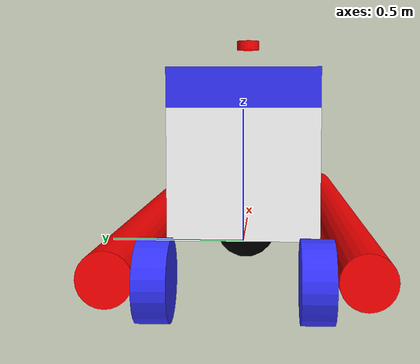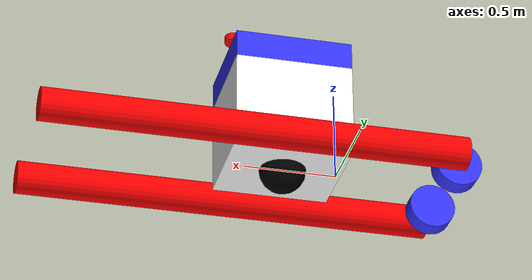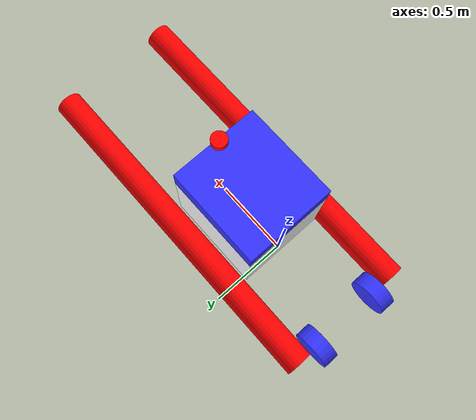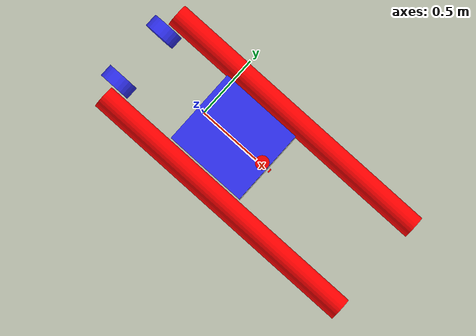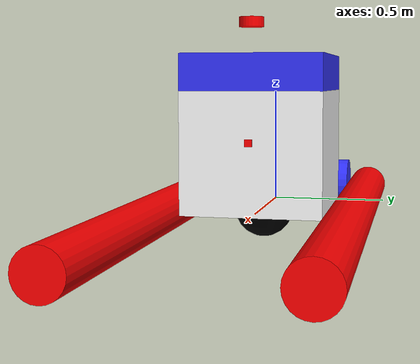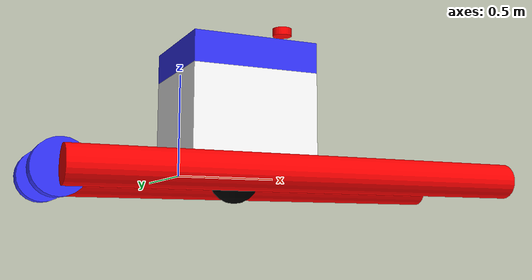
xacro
<?xml version="1.0"?>
<robot xmlns:xacro="http://www.ros.org/wiki/xacro"  name="robot">

   <xacro:include filename="robot_core.xacro" />

   <xacro:arg name="use_ros2_control" default="true"/>
   <xacro:arg name="sim_mode" default="false"/>

   <xacro:if value="$(arg use_ros2_control)">
      <xacro:include filename="ros2_control.xacro" />
   </xacro:if>
   <xacro:unless value="$(arg use_ros2_control)">
      <xacro:include filename="gazebo_control.xacro" />
   </xacro:unless>

   <xacro:include filename="lidar.xacro" />
   <xacro:include filename="camera.xacro" />
</robot>

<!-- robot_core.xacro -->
<robot xmlns:xacro="http://www.ros.org/wiki/xacro"  name="robot">

    <xacro:include filename="inertial_macros.xacro" />

    <material name="white">
        <color rgba="1 1 1 1" />
    </material>

    <material name="orange">
        <color rgba="1 0.3 0.3 1" />
    </material>

    <material name="blue">
        <color rgba="0.2 0.2 1 1" />
    </material>

    <material name="black">
        <color rgba="0 0 0 1" />
    </material>

    <material name="red">
        <color rgba="1 0 0 1" />
    </material>

    <link name="base_link">

    </link>

    <joint name="chassis_joint" type="fixed">
        <parent link="base_link"/>
        <child link="chassis"/>
        <origin xyz="-0.7305 0 0"/>
    </joint>

    <link name="chassis">
        <visual>
        <origin xyz="1.0225 0 0.254"/>
            <geometry>
                <box size="0.635 0.584 0.508"/>
            </geometry>
            <material name="white"/>
        </visual>

        <collision>
            <origin xyz="1.0225 0 0.254" rpy="0 0 0"/>
            <geometry>
                <box size="0.635 0.584 0.508"/>
            </geometry>
        </collision>

        <xacro:inertial_box mass="0.5" x="0.635" y="0.584" z="0.508">
            <origin xyz="1.0225 0 0.254" rpy="0 0 0"/>
        </xacro:inertial_box>

    </link>

    <joint name="component_joint" type="fixed">
        <parent link="chassis"/>
        <child link="component"/>
        <origin xyz="0 0 0.5842"/>
    </joint>

    <link name="component">
        <visual>
        <origin xyz="1.0225 0 0"/>
            <geometry>
                <box size="0.635 0.584 0.1524"/>
            </geometry>
            <material name="blue"/>
        </visual>

         <collision>
            <origin xyz="1.0225 0 0"/>
            <geometry>
                <box size="0.635 0.584 0.1524"/>
            </geometry>
        </collision>

        <xacro:inertial_box mass="0.1" x="0.635" y=".584" z=".1524">
                <origin xyz="1.0225 0 0" rpy="0 0 0"/>
        </xacro:inertial_box>

    </link>

    <gazebo reference="chassis">
    <material>Gazebo/White</material>
    </gazebo>

       <!-- LEFT FLOAT LINK -->

    <joint name="left_float_joint" type="fixed">
        <parent link="chassis"/>
        <child link="left_float" />
         <origin xyz="0 0 0" rpy="0 -${pi/2} 0" />
    </joint>

    <link name="left_float">
        <visual>
         <origin xyz="0 0.3937 -1.2573"/>
            <geometry>
                <cylinder radius="0.0889" length="2.27965" />
            </geometry>
            <material name="red"/>
        </visual>

        <collision>
            <origin xyz="0 0.3937 -1.2573"/>
            <geometry>
                 <cylinder radius="0.0889" length="2.27965" />
            </geometry>
        </collision>

         <xacro:inertial_cylinder mass="0.1" radius="0.0889" length="2.27965" >
                <origin xyz="0 0.3937 -1.2573" rpy="0 -${pi/2} 0"/>
        </xacro:inertial_cylinder>

    </link>

           <!-- RIGHT FLOAT LINK -->

    <joint name="right_float_joint" type="fixed">
        <parent link="chassis"/>
        <child link="right_float" />
        <origin xyz="0 0 0" rpy="0 -${pi/2} 0" />
    </joint>

    <link name="right_float">
        <visual>
         <origin xyz="0 -0.3937 -1.2573"/>
            <geometry>
                <cylinder radius="0.0889" length="2.27965" />
            </geometry>
            <material name="red"/>
        </visual>
         <collision>
            <origin xyz="0 -0.3937 -1.2573"/>
            <geometry>
                 <cylinder radius="0.0889" length="2.27965" />
            </geometry>
        </collision>

         <xacro:inertial_cylinder mass="0.1" radius="0.0889" length="2.27965" >
                <origin xyz="0 -0.3937 -1.2573" rpy="0 -${pi/2} 0"/>
        </xacro:inertial_cylinder>
    </link>

    <joint name="left_wheel_joint" type="continuous">
        <parent link="chassis"/>
        <child link="left_wheel"/>
        <origin xyz="0.127 0.2411 0" rpy="-${pi/2} 0 0"/>
        <axis xyz="0 0 1"/>
    </joint>

    <link name="left_wheel">
    <visual>
        <geometry>
            <cylinder length="0.1" radius="0.127" />
        </geometry>
        <material name="blue"/>
    </visual>

    <collision>
        <geometry>
            <sphere  radius="0.127" />
        </geometry>
    </collision>

    <xacro:inertial_sphere mass="0.1"  radius="0.127">
       <origin xyz="0 0 0" rpy="0 0 0"/>
    </xacro:inertial_sphere>

    </link>

    <joint name="right_wheel_joint" type="continuous">
        <parent link="chassis"/>
        <child link="right_wheel"/>
        <origin xyz="0.127 -0.2411 0" rpy="${pi/2} 0 0"/>
        <axis xyz="0 0 -1"/>
    </joint>

    <link name="right_wheel">
    <visual>
        <geometry>
            <cylinder length="0.1" radius="0.127" />
        </geometry>
        <material name="blue"/>
    </visual>

    <collision>
        <geometry>
            <sphere  radius="0.127" />
        </geometry>
    </collision>

    <xacro:inertial_sphere mass="0.1"  radius="0.127">
       <origin xyz="0 0 0" rpy="0 0 0"/>
    </xacro:inertial_sphere>

    </link>

<!-- CASTER WHEEL -->

<joint name="caster_wheel_joint" type="continuous">
    <parent link="chassis"/>
    <child link="caster_wheel"/>
    <origin xyz="1.0225 0 0" rpy="0 0 0"/>
</joint>

<link name="caster_wheel">
    <visual>
        <geometry>
            <sphere radius="0.127" />
        </geometry>
        <material name="black"/>
    </visual>

    <collision>
        <geometry>
            <sphere  radius="0.127" />
        </geometry>
    </collision>

    <xacro:inertial_sphere mass="0.05" radius="0.127">
        <origin xyz="0 0 0" rpy="0 0 0"/>
    </xacro:inertial_sphere>
</link>

<gazebo reference="caster_wheel">
    <material>Gazebo/Black</material>
    <mu1 value="0.001"/>
    <mu2 value="0.001"/>
</gazebo>

</robot>

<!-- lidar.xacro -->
<robot xmlns:xacro="http://www.ros.org/wiki/xacro" >

    <joint name="laser_joint" type="fixed">
        <parent link="chassis"/>
        <child link="laser_frame"/>
        <origin xyz="1.29 0 0.7830" rpy="0 0 0"/>
    </joint>

    <link name="laser_frame">
        <visual>
            <geometry>
                <cylinder radius="0.05" length="0.04"/>
            </geometry>
            <material name="red"/>
        </visual>
        <collision>
            <geometry>
                <cylinder radius="0.05" length="0.04"/>
            </geometry>
        </collision>
        <xacro:inertial_cylinder mass="0.1" length="0.04" radius="0.05">
            <origin xyz="0 0 0" rpy="0 0 0"/>
        </xacro:inertial_cylinder>
    </link>

    <gazebo reference="laser_frame">
        <material>Gazebo/Red</material>

        <sensor name="laser" type="ray">
            <pose> 0 0 0 0 0 0 </pose>
            <visualize>true</visualize>
            <update_rate>10</update_rate>
            <ray>
                <scan>
                    <horizontal>
                        <samples>360</samples>
                        <min_angle>-3.14</min_angle>
                        <max_angle>3.14</max_angle>
                    </horizontal>
                </scan>
                <range>
                    <min>0.3</min>
                    <max>12</max>
                </range>
            </ray>
            <plugin name="laser_controller" filename="libgazebo_ros_ray_sensor.so">
                <ros>
                    <argument>~/out:=scan</argument>
                </ros>
                <output_type>sensor_msgs/LaserScan</output_type>
                <frame_name>laser_frame</frame_name>
            </plugin>
        </sensor>
    </gazebo>

</robot>

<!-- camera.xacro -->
<robot xmlns:xacro="http://www.ros.org/wiki/xacro" >

    <joint name="camera_joint" type="fixed">
        <parent link="chassis"/>
        <child link="camera_link"/>
        <origin xyz="1.36 0 0.3030" rpy="0 0 0"/>
    </joint>

    <link name="camera_link">
        <visual>
            <geometry>
                <box size="0.010 0.03 0.03"/>
            </geometry>
            <material name="red"/>
        </visual>
        <collision>
            <geometry>
                <box size="0.010 0.03 0.03"/>
            </geometry>
        </collision>
        <xacro:inertial_cylinder mass="0.1" length="0.04" radius="0.05">
            <origin xyz="0 0 0" rpy="0 0 0"/>
        </xacro:inertial_cylinder>
    </link>

    <joint name="camera_optical_joint" type="fixed">
        <parent link="camera_link"/>
        <child link="camera_link_optical"/>
        <origin xyz="0 0 0" rpy="${-pi/2} 0 ${-pi/2}"/>
    </joint>

    <link name="camera_link_optical"></link>

    <gazebo reference="camera_link">
        <material>Gazebo/Red</material>

        <sensor name="camera" type="camera">
            <pose> 0 0 0 0 0 0 </pose>
            <visualize>true</visualize>
            <update_rate>10</update_rate>
          <camera>
            <horizontal_fov>1.089</horizontal_fov>
            <image>
                <format>R8G8B8</format>
                <width>640</width>
                <height>480</height>
            </image>
            <clip>
                <near>0.05</near>
                <far>8.0</far>
            </clip>
         </camera>
           <plugin name="camera_controller" filename="libgazebo_ros_camera.so">
                <frame_name>camera_link_optical</frame_name>
            </plugin>
        </sensor>

    </gazebo>

</robot>
